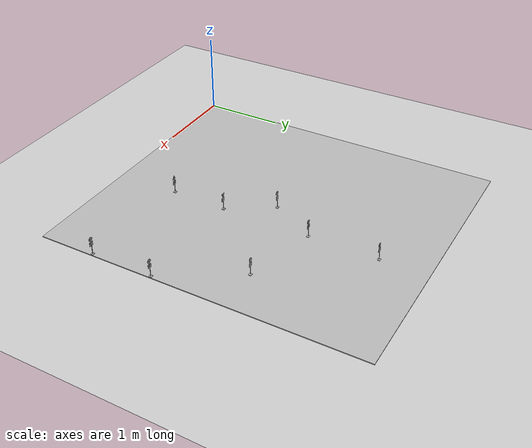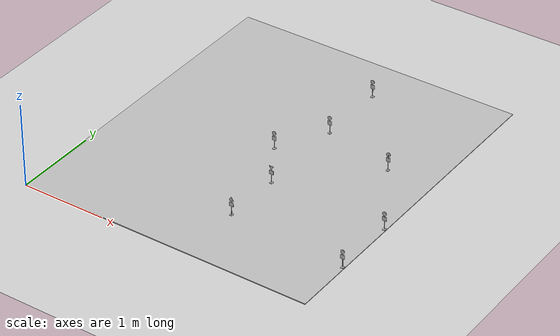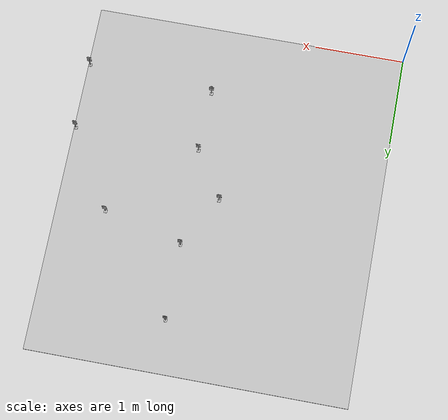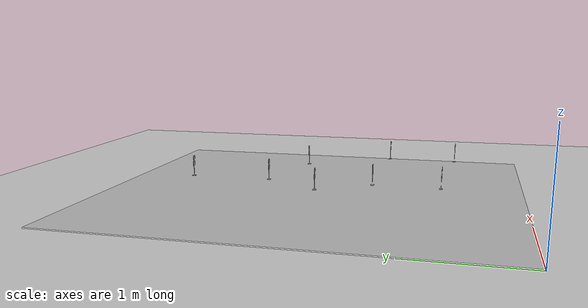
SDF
<sdf version="1.6">
 <world name="default">
  <light name="sun" type="directional">
   <pose>0 0 10 0 -0 0</pose>
   <diffuse>0.8 0.8 0.8 1</diffuse>
   <specular>0.1 0.1 0.1 1</specular>
   <attenuation>
    <range>1000</range>
    <constant>0.9</constant>
    <linear>0.01</linear>
    <quadratic>0.001</quadratic>
   </attenuation>
   <direction>-0.5 0.5 -1</direction>
  </light>
  <model name="ground_plane">
   <static>1</static>
   <link name="link">
    <collision name="collision">
     <geometry><plane><normal>0 0 1</normal><size>100 100</size></plane></geometry>
     <surface><friction><ode><mu>100</mu><mu2>50</mu2></ode></friction></surface>
    </collision>
    <visual name="visual">
     <cast_shadows>0</cast_shadows>
     <geometry><plane><normal>0 0 1</normal><size>100 100</size></plane></geometry>
     <material>
      <script><uri>file://media/materials/scripts/gazebo.material</uri><name>Gazebo/Grey</name></script>
     </material>
    </visual>
   </link>
  </model>
  <gravity>0 0 -9.8</gravity>
  <magnetic_field>6e-06 2.3e-05 -4.2e-05</magnetic_field>
  <atmosphere type="adiabatic"/>
  <physics name="default_physics" default="0" type="ode">
   <max_step_size>0.001</max_step_size>
   <real_time_factor>1</real_time_factor>
   <real_time_update_rate>1000</real_time_update_rate>
  </physics>
  <scene><ambient>0.4 0.4 0.4 1</ambient><background>0.7 0.7 0.7 1</background><shadows>1</shadows></scene>
  <spherical_coordinates>
   <surface_model>EARTH_WGS84</surface_model>
   <latitude_deg>0</latitude_deg>
   <longitude_deg>0</longitude_deg>
   <elevation>0</elevation>
   <heading_deg>0</heading_deg>
  </spherical_coordinates>
  <model name="bigcity">
   <link name="link_0">
    <inertial>
     <mass>1</mass>
     <inertia>
      <ixx>0.166667</ixx>
      <ixy>0</ixy>
      <ixz>0</ixz>
      <iyy>0.166667</iyy>
      <iyz>0</iyz>
      <izz>0.166667</izz>
     </inertia>
    </inertial>
    <visual name="visual">
     <geometry><mesh><uri>file://models/stl/daeBlender/bigcity.dae</uri><scale>1 1 1</scale></mesh></geometry>
    </visual>
    <collision name="collision">
     <geometry><mesh><uri>file://models/stl/daeBlender/bigcity.dae</uri><scale>1 1 1</scale></mesh></geometry>
     <surface>
      <friction>
       <ode><mu>1</mu><mu2>1</mu2><fdir1>0 0 0</fdir1><slip1>0</slip1><slip2>0</slip2></ode>
       <torsional>
        <coefficient>1</coefficient>
        <patch_radius>0</patch_radius>
        <surface_radius>0</surface_radius>
        <use_patch_radius>1</use_patch_radius>
        <ode><slip>0</slip></ode>
       </torsional>
      </friction>
      <bounce><restitution_coefficient>0</restitution_coefficient><threshold>1e+06</threshold></bounce>
      <contact>
       <collide_without_contact>0</collide_without_contact>
       <collide_without_contact_bitmask>1</collide_without_contact_bitmask>
       <collide_bitmask>1</collide_bitmask>
       <ode>
        <soft_cfm>0</soft_cfm>
        <soft_erp>0.2</soft_erp>
        <kp>1e+13</kp>
        <kd>1</kd>
        <max_vel>0.01</max_vel>
        <min_depth>0</min_depth>
       </ode>
       <bullet>
        <split_impulse>1</split_impulse>
        <split_impulse_penetration_threshold>-0.01</split_impulse_penetration_threshold>
        <soft_cfm>0</soft_cfm>
        <soft_erp>0.2</soft_erp>
        <kp>1e+13</kp>
        <kd>1</kd>
       </bullet>
      </contact>
     </surface>
    </collision>
   </link>
   <static>1</static>
   <pose>0 0 0.002788 0 -0 0</pose>
  </model>
  <model name="peatones_qr">
   <link name="link_6">
    <inertial>
     <mass>0.02</mass>
     <inertia>
      <ixx>0.166667</ixx>
      <ixy>0</ixy>
      <ixz>0</ixz>
      <iyy>0.166667</iyy>
      <iyz>0</iyz>
      <izz>0.166667</izz>
     </inertia>
    </inertial>
    <visual name="visual">
     <geometry>
      <mesh><uri>file://models/stl/SENALES_QR/PEATONES/peatones_qr.dae</uri><scale>1 1 1</scale></mesh>
     </geometry>
    </visual>
    <collision name="collision">
     <geometry>
      <mesh><uri>file://models/stl/SENALES_QR/PEATONES/peatones_qr.dae</uri><scale>1 1 1</scale></mesh>
     </geometry>
     <surface>
      <friction>
       <ode><mu>1</mu><mu2>1</mu2><fdir1>0 0 0</fdir1><slip1>0</slip1><slip2>0</slip2></ode>
       <torsional>
        <coefficient>1</coefficient>
        <patch_radius>0</patch_radius>
        <surface_radius>0</surface_radius>
        <use_patch_radius>1</use_patch_radius>
        <ode><slip>0</slip></ode>
       </torsional>
      </friction>
      <bounce><restitution_coefficient>0</restitution_coefficient><threshold>1e+06</threshold></bounce>
      <contact>
       <collide_without_contact>0</collide_without_contact>
       <collide_without_contact_bitmask>1</collide_without_contact_bitmask>
       <collide_bitmask>1</collide_bitmask>
       <ode>
        <soft_cfm>0</soft_cfm>
        <soft_erp>0.2</soft_erp>
        <kp>1e+13</kp>
        <kd>1</kd>
        <max_vel>0.01</max_vel>
        <min_depth>0</min_depth>
       </ode>
       <bullet>
        <split_impulse>1</split_impulse>
        <split_impulse_penetration_threshold>-0.01</split_impulse_penetration_threshold>
        <soft_cfm>0</soft_cfm>
        <soft_erp>0.2</soft_erp>
        <kp>1e+13</kp>
        <kd>1</kd>
       </bullet>
      </contact>
     </surface>
    </collision>
   </link>
   <static>0</static>
   <pose>2.06366 0.780848 0.012778 5e-06 -0 0</pose>
  </model>
  <model name="parar_qr">
   <link name="link_4">
    <inertial>
     <mass>0.02</mass>
     <inertia>
      <ixx>0.166667</ixx>
      <ixy>0</ixy>
      <ixz>0</ixz>
      <iyy>0.166667</iyy>
      <iyz>0</iyz>
      <izz>0.166667</izz>
     </inertia>
    </inertial>
    <visual name="visual">
     <geometry>
      <mesh><uri>file://models/stl/SENALES_QR/PARAR/parar_qr.dae</uri><scale>1 1 1</scale></mesh>
     </geometry>
    </visual>
    <collision name="collision">
     <geometry>
      <mesh><uri>file://models/stl/SENALES_QR/PARAR/parar_qr.dae</uri><scale>1 1 1</scale></mesh>
     </geometry>
     <surface>
      <friction>
       <ode><mu>1</mu><mu2>1</mu2><fdir1>0 0 0</fdir1><slip1>0</slip1><slip2>0</slip2></ode>
       <torsional>
        <coefficient>1</coefficient>
        <patch_radius>0</patch_radius>
        <surface_radius>0</surface_radius>
        <use_patch_radius>1</use_patch_radius>
        <ode><slip>0</slip></ode>
       </torsional>
      </friction>
      <bounce><restitution_coefficient>0</restitution_coefficient><threshold>1e+06</threshold></bounce>
      <contact>
       <collide_without_contact>0</collide_without_contact>
       <collide_without_contact_bitmask>1</collide_without_contact_bitmask>
       <collide_bitmask>1</collide_bitmask>
       <ode>
        <soft_cfm>0</soft_cfm>
        <soft_erp>0.2</soft_erp>
        <kp>1e+13</kp>
        <kd>1</kd>
        <max_vel>0.01</max_vel>
        <min_depth>0</min_depth>
       </ode>
       <bullet>
        <split_impulse>1</split_impulse>
        <split_impulse_penetration_threshold>-0.01</split_impulse_penetration_threshold>
        <soft_cfm>0</soft_cfm>
        <soft_erp>0.2</soft_erp>
        <kp>1e+13</kp>
        <kd>1</kd>
       </bullet>
      </contact>
     </surface>
    </collision>
   </link>
   <static>0</static>
   <pose>2.06988 3.41979 0.012778 8e-06 -0 0</pose>
  </model>
  <model name="rotonda_qr">
   <link name="link_9">
    <inertial>
     <mass>0.02</mass>
     <inertia>
      <ixx>0.166667</ixx>
      <ixy>0</ixy>
      <ixz>0</ixz>
      <iyy>0.166667</iyy>
      <iyz>0</iyz>
      <izz>0.166667</izz>
     </inertia>
    </inertial>
    <visual name="visual">
     <geometry>
      <mesh><uri>file://models/stl/SENALES_QR/ROTONDA/rotonda_qr.dae</uri><scale>1 1 1</scale></mesh>
     </geometry>
    </visual>
    <collision name="collision">
     <geometry>
      <mesh><uri>file://models/stl/SENALES_QR/ROTONDA/rotonda_qr.dae</uri><scale>1 1 1</scale></mesh>
     </geometry>
     <surface>
      <friction>
       <ode><mu>1</mu><mu2>1</mu2><fdir1>0 0 0</fdir1><slip1>0</slip1><slip2>0</slip2></ode>
       <torsional>
        <coefficient>1</coefficient>
        <patch_radius>0</patch_radius>
        <surface_radius>0</surface_radius>
        <use_patch_radius>1</use_patch_radius>
        <ode><slip>0</slip></ode>
       </torsional>
      </friction>
      <bounce><restitution_coefficient>0</restitution_coefficient><threshold>1e+06</threshold></bounce>
      <contact>
       <collide_without_contact>0</collide_without_contact>
       <collide_without_contact_bitmask>1</collide_without_contact_bitmask>
       <collide_bitmask>1</collide_bitmask>
       <ode>
        <soft_cfm>0</soft_cfm>
        <soft_erp>0.2</soft_erp>
        <kp>1e+13</kp>
        <kd>1</kd>
        <max_vel>0.01</max_vel>
        <min_depth>0</min_depth>
       </ode>
       <bullet>
        <split_impulse>1</split_impulse>
        <split_impulse_penetration_threshold>-0.01</split_impulse_penetration_threshold>
        <soft_cfm>0</soft_cfm>
        <soft_erp>0.2</soft_erp>
        <kp>1e+13</kp>
        <kd>1</kd>
       </bullet>
      </contact>
     </surface>
    </collision>
   </link>
   <static>0</static>
   <pose>1.7499 2.00047 0.012778 3e-06 -3e-06 0</pose>
  </model>
  <model name="ceda_qr">
   <link name="link_0">
    <inertial>
     <mass>0.02</mass>
     <inertia>
      <ixx>0.166667</ixx>
      <ixy>0</ixy>
      <ixz>0</ixz>
      <iyy>0.166667</iyy>
      <iyz>0</iyz>
      <izz>0.166667</izz>
     </inertia>
    </inertial>
    <visual name="visual">
     <geometry><mesh><uri>file://models/stl/SENALES_QR/CEDA/ceda_qr.dae</uri><scale>1 1 1</scale></mesh></geometry>
    </visual>
    <collision name="collision">
     <geometry><mesh><uri>file://models/stl/SENALES_QR/CEDA/ceda_qr.dae</uri><scale>1 1 1</scale></mesh></geometry>
     <surface>
      <friction>
       <ode><mu>1</mu><mu2>1</mu2><fdir1>0 0 0</fdir1><slip1>0</slip1><slip2>0</slip2></ode>
       <torsional>
        <coefficient>1</coefficient>
        <patch_radius>0</patch_radius>
        <surface_radius>0</surface_radius>
        <use_patch_radius>1</use_patch_radius>
        <ode><slip>0</slip></ode>
       </torsional>
      </friction>
      <bounce><restitution_coefficient>0</restitution_coefficient><threshold>1e+06</threshold></bounce>
      <contact>
       <collide_without_contact>0</collide_without_contact>
       <collide_without_contact_bitmask>1</collide_without_contact_bitmask>
       <collide_bitmask>1</collide_bitmask>
       <ode>
        <soft_cfm>0</soft_cfm>
        <soft_erp>0.2</soft_erp>
        <kp>1e+13</kp>
        <kd>1</kd>
        <max_vel>0.01</max_vel>
        <min_depth>0</min_depth>
       </ode>
       <bullet>
        <split_impulse>1</split_impulse>
        <split_impulse_penetration_threshold>-0.01</split_impulse_penetration_threshold>
        <soft_cfm>0</soft_cfm>
        <soft_erp>0.2</soft_erp>
        <kp>1e+13</kp>
        <kd>1</kd>
       </bullet>
      </contact>
     </surface>
    </collision>
   </link>
   <static>0</static>
   <pose>2.08023 1.47221 0.012778 1e-06 -1e-06 0</pose>
  </model>
  <model name="velocidad40_qr">
   <link name="link_13">
    <inertial>
     <mass>0.02</mass>
     <inertia>
      <ixx>0.166667</ixx>
      <ixy>0</ixy>
      <ixz>0</ixz>
      <iyy>0.166667</iyy>
      <iyz>0</iyz>
      <izz>0.166667</izz>
     </inertia>
    </inertial>
    <visual name="visual">
     <geometry>
      <mesh><uri>file://models/stl/SENALES_QR/VELOCIDAD40/velo40_qr.dae</uri><scale>1 1 1</scale></mesh>
     </geometry>
    </visual>
    <collision name="collision">
     <geometry>
      <mesh><uri>file://models/stl/SENALES_QR/VELOCIDAD40/velo40_qr.dae</uri><scale>1 1 1</scale></mesh>
     </geometry>
     <surface>
      <friction>
       <ode><mu>1</mu><mu2>1</mu2><fdir1>0 0 0</fdir1><slip1>0</slip1><slip2>0</slip2></ode>
       <torsional>
        <coefficient>1</coefficient>
        <patch_radius>0</patch_radius>
        <surface_radius>0</surface_radius>
        <use_patch_radius>1</use_patch_radius>
        <ode><slip>0</slip></ode>
       </torsional>
      </friction>
      <bounce><restitution_coefficient>0</restitution_coefficient><threshold>1e+06</threshold></bounce>
      <contact>
       <collide_without_contact>0</collide_without_contact>
       <collide_without_contact_bitmask>1</collide_without_contact_bitmask>
       <collide_bitmask>1</collide_bitmask>
       <ode>
        <soft_cfm>0</soft_cfm>
        <soft_erp>0.2</soft_erp>
        <kp>1e+13</kp>
        <kd>1</kd>
        <max_vel>0.01</max_vel>
        <min_depth>0</min_depth>
       </ode>
       <bullet>
        <split_impulse>1</split_impulse>
        <split_impulse_penetration_threshold>-0.01</split_impulse_penetration_threshold>
        <soft_cfm>0</soft_cfm>
        <soft_erp>0.2</soft_erp>
        <kp>1e+13</kp>
        <kd>1</kd>
       </bullet>
      </contact>
     </surface>
    </collision>
   </link>
   <static>0</static>
   <pose>3.47918 0.689176 0.012778 3e-06 -2e-06 0</pose>
  </model>
  <model name="velocidad20_qr">
   <link name="link_12">
    <inertial>
     <mass>0.02</mass>
     <inertia>
      <ixx>0.166667</ixx>
      <ixy>0</ixy>
      <ixz>0</ixz>
      <iyy>0.166667</iyy>
      <iyz>0</iyz>
      <izz>0.166667</izz>
     </inertia>
    </inertial>
    <visual name="visual">
     <geometry>
      <mesh><uri>file://models/stl/SENALES_QR/VELOCIDAD20/velo20_qr.dae</uri><scale>1 1 1</scale></mesh>
     </geometry>
    </visual>
    <collision name="collision">
     <geometry>
      <mesh><uri>file://models/stl/SENALES_QR/VELOCIDAD20/velo20_qr.dae</uri><scale>1 1 1</scale></mesh>
     </geometry>
     <surface>
      <friction>
       <ode><mu>1</mu><mu2>1</mu2><fdir1>0 0 0</fdir1><slip1>0</slip1><slip2>0</slip2></ode>
       <torsional>
        <coefficient>1</coefficient>
        <patch_radius>0</patch_radius>
        <surface_radius>0</surface_radius>
        <use_patch_radius>1</use_patch_radius>
        <ode><slip>0</slip></ode>
       </torsional>
      </friction>
      <bounce><restitution_coefficient>0</restitution_coefficient><threshold>1e+06</threshold></bounce>
      <contact>
       <collide_without_contact>0</collide_without_contact>
       <collide_without_contact_bitmask>1</collide_without_contact_bitmask>
       <collide_bitmask>1</collide_bitmask>
       <ode>
        <soft_cfm>0</soft_cfm>
        <soft_erp>0.2</soft_erp>
        <kp>1e+13</kp>
        <kd>1</kd>
        <max_vel>0.01</max_vel>
        <min_depth>0</min_depth>
       </ode>
       <bullet>
        <split_impulse>1</split_impulse>
        <split_impulse_penetration_threshold>-0.01</split_impulse_penetration_threshold>
        <soft_cfm>0</soft_cfm>
        <soft_erp>0.2</soft_erp>
        <kp>1e+13</kp>
        <kd>1</kd>
       </bullet>
      </contact>
     </surface>
    </collision>
   </link>
   <static>0</static>
   <pose>3.47868 1.45634 0.012788 2e-06 -3e-06 0</pose>
  </model>
  <model name="velocidad10_qr_0">
   <link name="link_11">
    <inertial>
     <mass>0.02</mass>
     <inertia>
      <ixx>0.166667</ixx>
      <ixy>0</ixy>
      <ixz>0</ixz>
      <iyy>0.166667</iyy>
      <iyz>0</iyz>
      <izz>0.166667</izz>
     </inertia>
    </inertial>
    <visual name="visual">
     <geometry>
      <mesh><uri>file://models/stl/SENALES_QR/VELOCIDAD10/velo10_qr.dae</uri><scale>1 1 1</scale></mesh>
     </geometry>
    </visual>
    <collision name="collision">
     <geometry>
      <mesh><uri>file://models/stl/SENALES_QR/VELOCIDAD10/velo10_qr.dae</uri><scale>1 1 1</scale></mesh>
     </geometry>
     <surface>
      <friction>
       <ode><mu>1</mu><mu2>1</mu2><fdir1>0 0 0</fdir1><slip1>0</slip1><slip2>0</slip2></ode>
       <torsional>
        <coefficient>1</coefficient>
        <patch_radius>0</patch_radius>
        <surface_radius>0</surface_radius>
        <use_patch_radius>1</use_patch_radius>
        <ode><slip>0</slip></ode>
       </torsional>
      </friction>
      <bounce><restitution_coefficient>0</restitution_coefficient><threshold>1e+06</threshold></bounce>
      <contact>
       <collide_without_contact>0</collide_without_contact>
       <collide_without_contact_bitmask>1</collide_without_contact_bitmask>
       <collide_bitmask>1</collide_bitmask>
       <ode>
        <soft_cfm>0</soft_cfm>
        <soft_erp>0.2</soft_erp>
        <kp>1e+13</kp>
        <kd>1</kd>
        <max_vel>0.01</max_vel>
        <min_depth>0</min_depth>
       </ode>
       <bullet>
        <split_impulse>1</split_impulse>
        <split_impulse_penetration_threshold>-0.01</split_impulse_penetration_threshold>
        <soft_cfm>0</soft_cfm>
        <soft_erp>0.2</soft_erp>
        <kp>1e+13</kp>
        <kd>1</kd>
       </bullet>
      </contact>
     </surface>
    </collision>
   </link>
   <static>0</static>
   <pose>2.07339 2.57252 0.012788 3e-06 -1e-06 0</pose>
  </model>
  <model name="derecha_qr_0">
   <link name="link_1">
    <inertial>
     <mass>0.02</mass>
     <inertia>
      <ixx>0.166667</ixx>
      <ixy>0</ixy>
      <ixz>0</ixz>
      <iyy>0.166667</iyy>
      <iyz>0</iyz>
      <izz>0.166667</izz>
     </inertia>
    </inertial>
    <visual name="visual">
     <geometry>
      <mesh><uri>file://models/stl/SENALES_QR/DERECHA/dcha_qr.dae</uri><scale>1 1 1</scale></mesh>
     </geometry>
    </visual>
    <collision name="collision">
     <geometry>
      <mesh><uri>file://models/stl/SENALES_QR/DERECHA/dcha_qr.dae</uri><scale>1 1 1</scale></mesh>
     </geometry>
     <surface>
      <friction>
       <ode><mu>1</mu><mu2>1</mu2><fdir1>0 0 0</fdir1><slip1>0</slip1><slip2>0</slip2></ode>
       <torsional>
        <coefficient>1</coefficient>
        <patch_radius>0</patch_radius>
        <surface_radius>0</surface_radius>
        <use_patch_radius>1</use_patch_radius>
        <ode><slip>0</slip></ode>
       </torsional>
      </friction>
      <bounce><restitution_coefficient>0</restitution_coefficient><threshold>1e+06</threshold></bounce>
      <contact>
       <collide_without_contact>0</collide_without_contact>
       <collide_without_contact_bitmask>1</collide_without_contact_bitmask>
       <collide_bitmask>1</collide_bitmask>
       <ode>
        <soft_cfm>0</soft_cfm>
        <soft_erp>0.2</soft_erp>
        <kp>1e+13</kp>
        <kd>1</kd>
        <max_vel>0.01</max_vel>
        <min_depth>0</min_depth>
       </ode>
       <bullet>
        <split_impulse>1</split_impulse>
        <split_impulse_penetration_threshold>-0.01</split_impulse_penetration_threshold>
        <soft_cfm>0</soft_cfm>
        <soft_erp>0.2</soft_erp>
        <kp>1e+13</kp>
        <kd>1</kd>
       </bullet>
      </contact>
     </surface>
    </collision>
   </link>
   <static>0</static>
   <pose>2.95159 2.35084 0.012778 1e-06 -2e-06 3.13535</pose>
  </model>
 </world>
</sdf>
